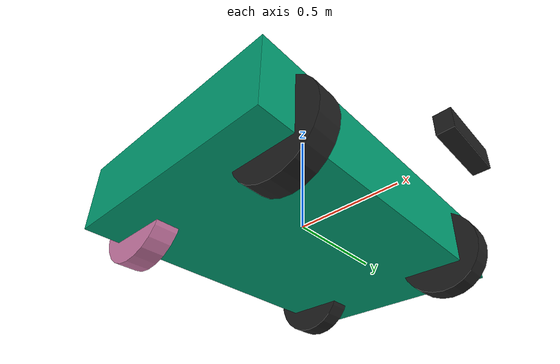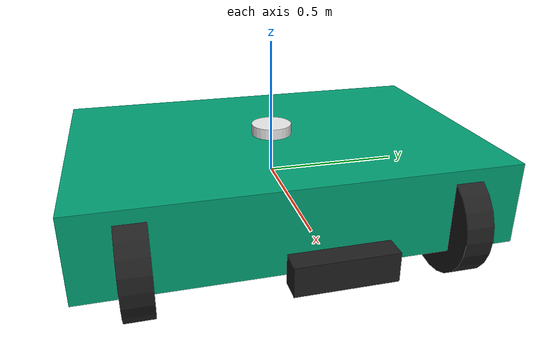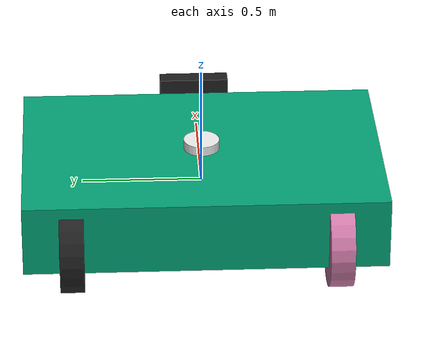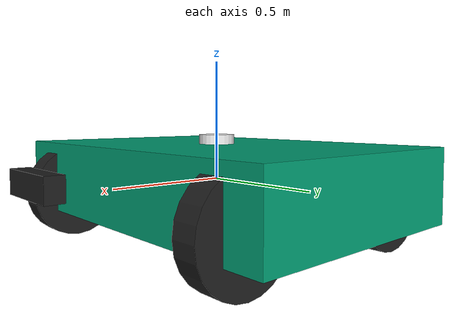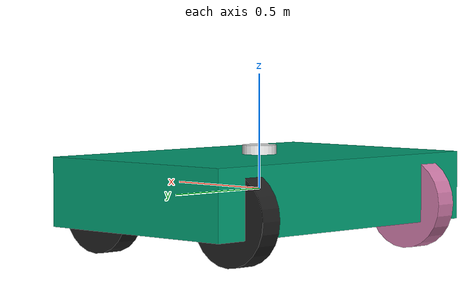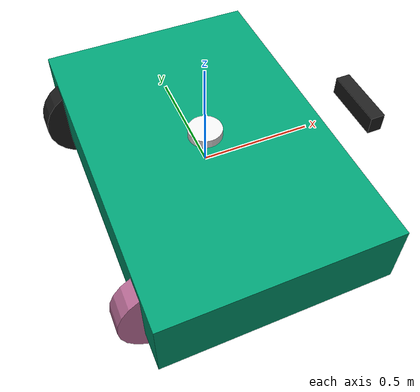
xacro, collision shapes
<?xml version="1.0"?>
<robot xmlns:xacro="http://www.ros.org/wiki/xacro" name="diffbot">

    <xacro:include filename="$(find diffbot)/urdf/materials.xacro"/>
    <xacro:include filename="$(find diffbot)/urdf/inertia.xacro"/>
    <xacro:include filename="$(find diffbot)/urdf/gazebo.xacro"/>

    <link name="base_footprint"/>

    <link name="base_link"/>

    <joint name="base_joint" type="fixed">
        <parent link="base_footprint"/>
        <child link="base_link"/>
        <origin xyz="0 0 0" rpy="0 0 0.0" />
    </joint>

    <link name="chassis_link">

        <collision>
            <origin xyz="0 0 0" rpy="0 0 0" />
            <geometry>
                <box size="1.0 1.5 0.3"/>
            </geometry>
        </collision>

        <visual>
            <origin xyz="0 0 0" rpy="0 0 0" />
            <geometry>
                <mesh filename="file://$(find diffbot)/meshes/body_nokiya.dae" scale="1 1 1"/>
            </geometry>
        </visual>

        <inertial>
            <mass value="1.0" />
            <xacro:box_inertia m="1.0" x="1.0" y="1.5" z = "0.3"/>
        </inertial>

    </link>

    <joint name="chassis_joint" type="fixed">
        <parent link="base_link"/>
        <child link="chassis_link"/>
        <origin xyz="0.0 0 0" rpy="0 0 0.0" />
    </joint>

    <!-- Left Wheels -->
    <link name="front_left_wheel">

        <collision>
            <origin xyz="0 0 0" rpy="1.57 0 0" />
            <geometry>
                <cylinder radius="0.2" length="0.1"/>
            </geometry>
        </collision>

        <visual>
            <origin xyz="0 0 0" rpy="1.57 0 0" />
            <geometry>
                <cylinder radius="0.2" length="0.1"/>
            </geometry>
        </visual>

        <inertial>
            <mass value="0.5"/>
            <xacro:cylinder_inertia m="0.5" r="-0.2" h="0.1"/>
        </inertial>

    </link>

    <joint name="front_left_wheel_joint" type="continuous">
        <parent link="chassis_link"/>
        <child link="front_left_wheel"/>
        <origin xyz="0.4 0.55 -0.07" rpy="0 0 0" />
        <axis xyz="0.0 1.0 0.0"/>
    </joint>

    <link name="rear_left_wheel">
        <collision>
            <origin xyz="0 0 0" rpy="1.57 0 0" />
            <geometry>
                <cylinder radius="0.2" length="0.1"/>
            </geometry>
        </collision>

        <visual>
            <origin xyz="0 0 0" rpy="1.57 0 0" />
            <geometry>
                <cylinder radius="0.2" length="0.1"/>
            </geometry>
        </visual>

        <inertial>
            <mass value="0.5"/>
            <xacro:cylinder_inertia m="0.5" r="-0.2" h="0.1"/>
        </inertial>

    </link>

    <joint name="rear_left_wheel_joint" type="continuous"> <!--continuous-->
        <parent link="chassis_link"/>
        <child link="rear_left_wheel"/>
        <origin xyz="-0.4 0.55 -0.07" rpy="0 0 0" />
        <axis xyz="0.0 1.0 0.0"/>
    </joint>

    <!-- Right Wheels -->
    <link name="front_right_wheel">

        <collision>
            <origin xyz="0 0 0" rpy="1.57 0 0" />
            <geometry>
                <cylinder radius="0.2" length="0.1"/>
            </geometry>
        </collision>

        <visual>
            <origin xyz="0 0 0" rpy="1.57 0 0" />
            <geometry>
                <cylinder radius="0.2" length="0.1"/>
            </geometry>
        </visual>

        <inertial>
            <mass value="0.5"/>
            <xacro:cylinder_inertia m="0.5" r="-0.2" h="0.1"/>
        </inertial>

    </link>

    <joint name="front_right_wheel_joint" type="continuous">
        <parent link="chassis_link"/>
        <child link="front_right_wheel"/>
        <origin xyz="0.4 -0.55 -0.07" rpy="0 0 0" />
        <axis xyz="0.0 1.0 0.0"/>
    </joint>

    <link name="rear_right_wheel">
        <collision>
            <origin xyz="0 0 0" rpy="1.57 0 0" />
            <geometry>
                <cylinder radius="0.2" length="0.1"/>
            </geometry>
        </collision>

        <visual>
            <origin xyz="0 0 0" rpy="1.57 0 0" />
            <geometry>
                <cylinder radius="0.2" length="0.1"/>
            </geometry>
        </visual>

        <inertial>
            <mass value="0.5"/>
            <xacro:cylinder_inertia m="0.5" r="-0.2" h="0.1"/>
        </inertial>

    </link>

    <joint name="rear_right_wheel_joint" type="continuous"> <!--continuous-->
        <parent link="chassis_link"/>
        <child link="rear_right_wheel"/>
        <origin xyz="-0.4 -0.55 -0.07" rpy="0 0 0" />
        <axis xyz="0.0 1.0 0.0"/>
    </joint>

    <gazebo reference="front_left_wheel">
        <material>Gazebo/Black</material>
    </gazebo>

    <gazebo reference="front_right_wheel">
        <material>Gazebo/Black</material>
    </gazebo>

    <gazebo reference="rear_left_wheel">
        <material>Gazebo/Black</material>
    </gazebo>

    <gazebo reference="rear_front_wheel">
        <material>Gazebo/Black</material>
    </gazebo>

    <!-- ............................. 2D LIDAR ........................................ -->

    <link name="two_d_lidar">
        <collision>
            <origin xyz="0 0 0" rpy="0 0 0" />
            <geometry>
                <cylinder length="0.06" radius="0.075"/>
            </geometry>
        </collision>

        <visual>
            <origin xyz="0 0 0" rpy="0 0 0" />
            <geometry>
                <cylinder length="0.06" radius="0.075"/>
            </geometry>
            <material name="aluminium"/>
        </visual>

        <inertial>
            <origin xyz="0 0 0" rpy="0 0 0" />
            <mass value="0.1"/>
            <xacro:cylinder_inertia m="0.1" r="0.075" h="0.06"/>
        </inertial>
    </link>

    <joint name="two_d_lidar_joint" type="fixed">
        <parent link="chassis_link"/>
        <child link="two_d_lidar"/>
        <origin xyz="0.0 0 0.16" rpy="0 0 0" />
    </joint>

    <gazebo reference="two_d_lidar">
        <material>Gazebo/White</material>
    </gazebo>

    <!-- ............................. IMU ........................................ -->

    <link name="imu_frame"/>

    <joint name="imu_joint" type="fixed">
        <parent link="base_link"/>
        <child link="imu_frame"/>
        <origin xyz="0.0 0.0 0.16" rpy="0.0 0.0 0.0"/>
    </joint>

    <link name="camera">

        <collision>
            <origin xyz="0 0 0" rpy="0 0 0" />
            <geometry>
                <box size="0.07 0.3 0.09"/>
            </geometry>
        </collision>

        <visual>
            <origin xyz="0 0 0" rpy="0 0 0" />
            <geometry>
                <mesh filename="file://$(find diffbot)/meshes/camera/d415.dae"/>
            </geometry>
            <material name="black"/>
        </visual>

        <inertial>
            <mass value="0.01"/>
            <xacro:box_inertia m="0.01" x="0.07" y="0.3" z = "0.09"/>
        </inertial>

    </link>

    <joint name="camera_joint" type="fixed">
        <origin rpy="0 0 0" xyz="0.78 0 0.0428"/>
        <parent link="base_link"/>
        <child link="camera"/>
    </joint>

    <link name="camera_optical"/>

    <joint name="camera_optical_joint" type="fixed">
        <origin xyz="0 0 0" rpy="0 0 0"/>
        <parent link="camera"/>
        <child link="camera_optical"/>
    </joint>

</robot>
